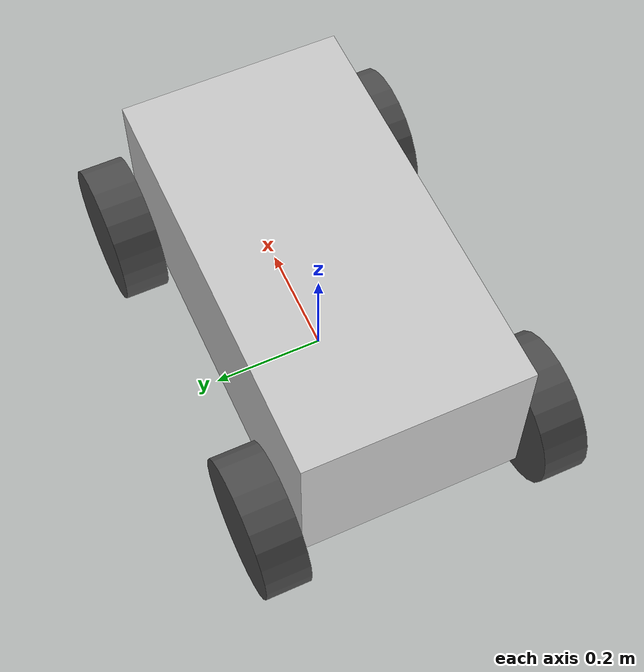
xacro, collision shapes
<?xml version="1.0"?>
<robot xmlns:xacro="http://www.ros.org/wiki/xacro" name="d4zbot">

    <!-- INCLUDED URDF/XACRO FILES -->
    <xacro:include filename="$(find d4zbot_description)/urdf/materials.urdf.xacro"/>
    <xacro:include filename="$(find d4zbot_description)/urdf/wheel.urdf.xacro"/>
    <xacro:include filename="$(find d4zbot_description)/urdf/base.urdf.xacro"/>

    <!-- PROPERTIES -->
    <xacro:property name="PI" value="3.14159"/>

    <!-- Extras -->
    <xacro:arg name="robot_namespace" default="$(optenv ROBOT_NAMESPACE /)" />

    <!-- D4ZBOT MACROS -->
    <xacro:d4zbot_base/>
    <xacro:d4zbot_wheel wheel_prefix="front_left" x="0.31648" y="0.25125" z="-0.10178"/>
    <xacro:d4zbot_wheel wheel_prefix="front_right" x="0.31648" y="-0.25125" z="-0.10178"/>
    <xacro:d4zbot_wheel wheel_prefix="rear_left" x="-0.31648" y="0.25125" z="-0.10178"/>
    <xacro:d4zbot_wheel wheel_prefix="rear_right" x="-0.31648" y="-0.25125" z="-0.10178"/>

    <!-- PLUGINS -->
    <gazebo>
        <plugin name="gazebo_ros_control" filename="libgazebo_ros_control.so">
          <robotNamespace>$(arg robot_namespace)</robotNamespace>
          <legacyModeNS>true</legacyModeNS>
        </plugin>
      </gazebo>

</robot>

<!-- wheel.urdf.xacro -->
<robot xmlns:xacro="http://www.ros.org/wiki/xacro" name="d4zbot_wheel">

    <xacro:macro name="d4zbot_wheel" params="wheel_prefix x y z">

    <!-- WHEEL LINK -->
        <link name="${wheel_prefix}_link">

            <visual>
                <origin xyz="${-x} ${-y} ${-z}" rpy="0.0 0.0 0.0"/>
                <geometry>
                    <mesh filename="package://d4zbot_description/meshes/${wheel_prefix}_wheel.STL"/>
                </geometry>
                <material name="dark_grey"/>
            </visual>

            <collision>
                <origin xyz="0 0 0" rpy="${PI/2} 0.0 0.0"/>
                <geometry>
                    <cylinder radius="0.124" length="0.08"/>
                </geometry>
            </collision>

            <inertial>
				<mass value="3.0" />
				<origin xyz="0 0 0" />
				<inertia  ixx="0.02467" ixy="0" ixz="0" iyy="0.04411" iyz="0" izz="0.02467" />
			</inertial>
    </link>

    <!-- JOINT -->
    <joint name="${wheel_prefix}_joint" type="continuous">
        <parent link="base_link"/>
        <child link="${wheel_prefix}_link"/>
        <axis xyz="0 1 0" rpy="0 0 0" />
        <origin xyz="${x} ${y} ${z}" rpy="0.0 0.0 0.0"/>
    </joint>

    <!-- GAZEBO -->
    <gazebo reference="${wheel_prefix}_link">
        <mu1 value="1.0"/>
        <mu2 value="1.0"/>
        <kp value="10000000.0" />
        <kd value="1.0" />
        <fdir1 value="1 0 0"/>
        <material>
            Gazebo/Black
        </material>
    </gazebo>

    <!-- TRANSMISSION -->
    <transmission name="${wheel_prefix}_wheel_trans" type="SimpleTransmission">
        <type>transmission_interface/SimpleTransmission</type>
        <actuator name="${wheel_prefix}_wheel_motor">
            <mechanicalReduction>1</mechanicalReduction>
        </actuator>
        <joint name="${wheel_prefix}_joint">
            <hardwareInterface>hardware_interface/VelocityJointInterface</hardwareInterface>
        </joint>
    </transmission>

    </xacro:macro>

</robot>

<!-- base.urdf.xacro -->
<robot xmlns:xacro="http://www.ros.org/wiki/xacro" name="d4zbot_base">

    <xacro:macro name="d4zbot_base">

        <!-- BASE FOOTPRINT -->
        <link name="base_footprint"/>

        <joint name="base_footprint_joint" type="fixed">
            <origin xyz="0 0 0.2" rpy="0 0 0" />
            <parent link="base_footprint" />
            <child link="base_link" />
        </joint>

        <!-- BASE LINK -->
        <link name="base_link">
            <visual>
                <origin xyz="0 0 0" rpy="0 0 0" />
                <geometry>
                    <mesh filename="package://d4zbot_description/meshes/base_link.STL" />
                </geometry>
                <material name="light_grey"/>
            </visual>
            <collision>
            <origin xyz="0 0 0" rpy="0 0 0" />
                <geometry>
                    <box size="0.75 0.4 0.3"/>
                </geometry>
            </collision>
        </link>

        <!-- INERTIAL LINK -->
        <link name="inertial_link">
            <inertial>
                <mass value="7.0" />
                <origin xyz="0 0 0" />
                <inertia ixx="0.6022" ixy="-0.02364" ixz="-0.1197" iyy="1.7386" iyz="-0.001544" izz="2.0296" />
            </inertial>
        </link>

        <!-- INERTIAL JOINT -->
        <joint name="inertial_joint" type="fixed">
            <origin xyz="0 0 0" rpy="0 0 0" />
            <parent link="base_link" />
            <child link="inertial_link" />
        </joint>

        <!-- GAZEBO -->
        <gazebo reference="base_link">
            <mu1 value="1.0"/>
			<mu2 value="1.0"/>
			<kp value="10000000.0" />
			<kd value="1.0" />
			<fdir1 value="1 0 0"/>
            <material>
                Gazebo/Green
            </material>
            <turnGavityOff>false</turnGavityOff>
        </gazebo>

    </xacro:macro>
</robot>
